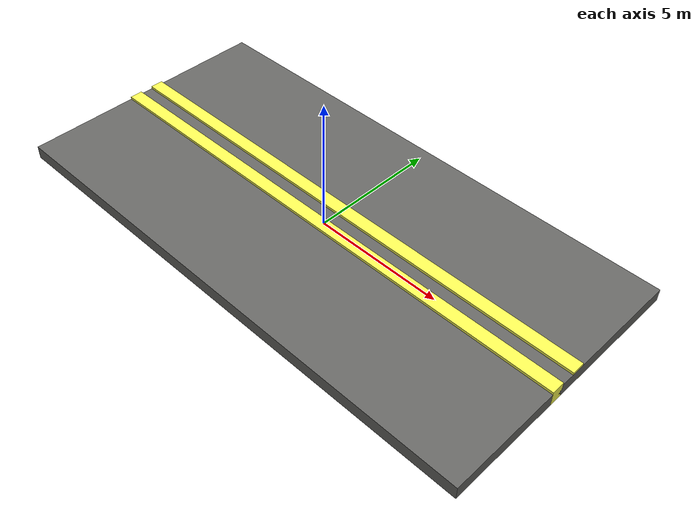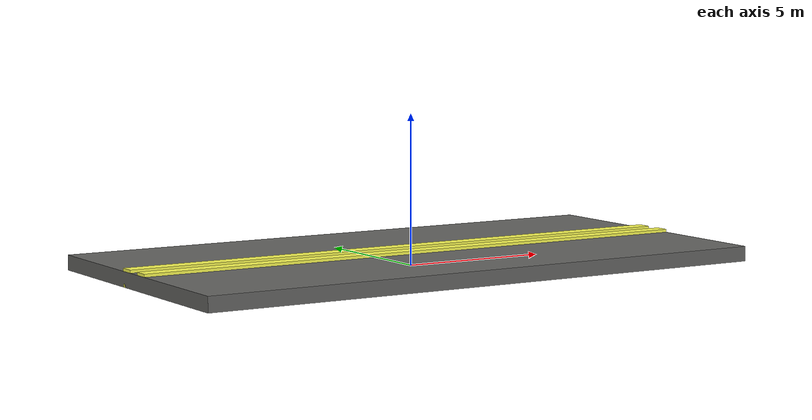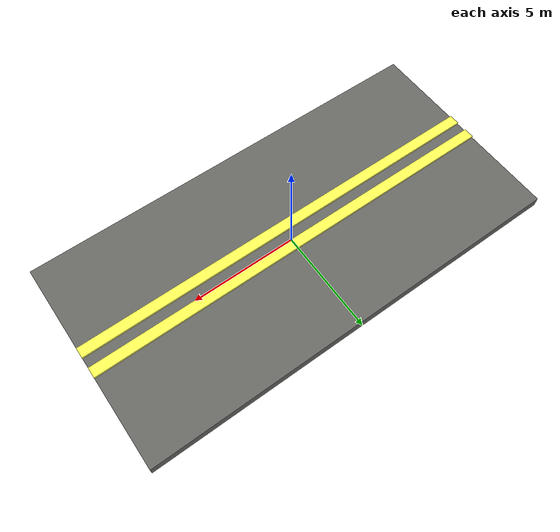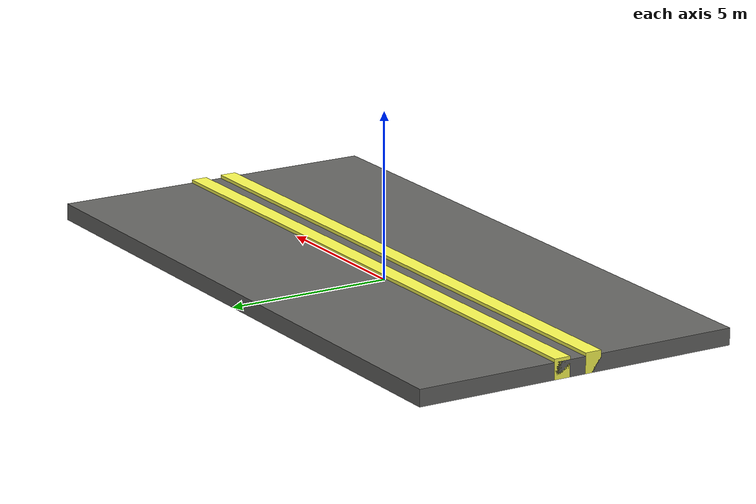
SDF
<?xml version="1.0" ?>
<sdf version="1.6">
  <model name="road">
    <static>true</static>
      <link name="link_base">
      <pose>0 0 .25 0 0 0</pose>
        <collision name="col">
            <geometry>
                <box><size>20 10 .5</size></box>
            </geometry>
        </collision>
        <visual name="vis">
            <geometry>
                <box><size>20 10 .5</size></box>
            </geometry>
          <material>
            <ambient>0.31 0.30 0.29 1</ambient>
            <diffuse>0.40 0.40 0.39 1</diffuse>
            <pbr>
              <metal>
                <albedo_map>textures/asphalt.jpeg</albedo_map>
                <roughness>0.9</roughness>
                <metalness>0.0</metalness>
              </metal>
            </pbr>
          </material>
        </visual>
      </link>

      <link name="link_line_left">
        <pose>0 .5 .3 0 0 0</pose>
          <collision name="col">
            <geometry>
              <box><size>20 .5 .6</size></box>
            </geometry>
          </collision>

          <visual name="vis">
            <geometry>
              <box><size>20 .5 .6</size></box>
            </geometry>

            <material>
            <ambient>0.9 0.9 0.23 1</ambient>
            <diffuse>1 1 0.33 1</diffuse>

            <color rgba="2.28 2.4 .09 1"/>
            </material>
          </visual>
      </link>

      <link name="link_line_right">
        <pose>0 -.5 .3 0 0 0</pose>
          <collision name="col">
            <geometry>
              <box><size>20 .5 .6</size></box>
            </geometry>
          </collision>

          <visual name="vis">
            <geometry>
              <box><size>20 .5 .6</size></box>
            </geometry>

            <material>
            <ambient>0.9 0.9 0.23 1</ambient>
            <diffuse>1 1 0.33 1</diffuse>

            <color rgba="2.28 2.4 .09 1"/>
            </material>
          </visual>
      </link>
  </model>
</sdf>
